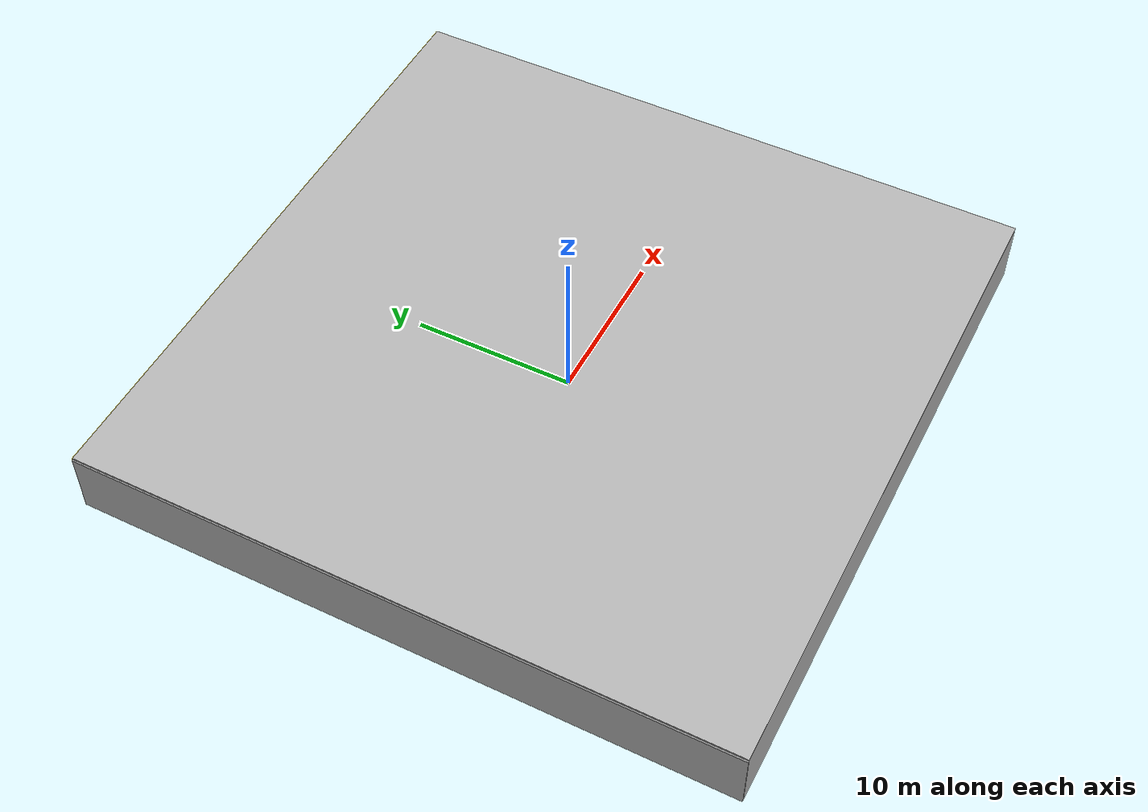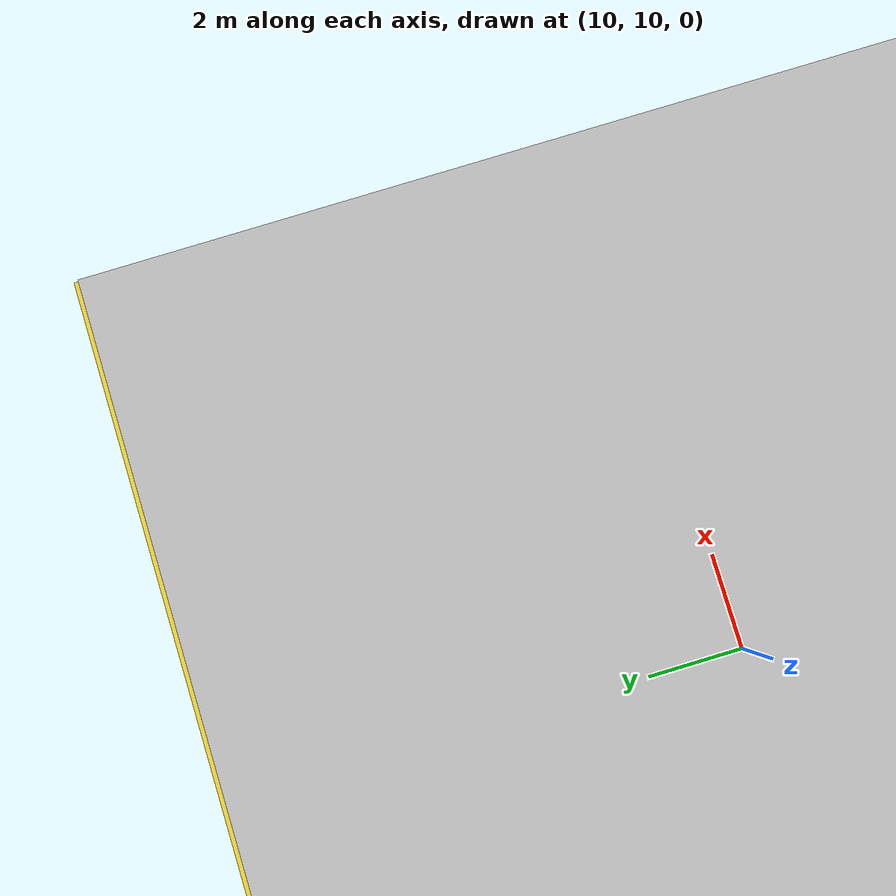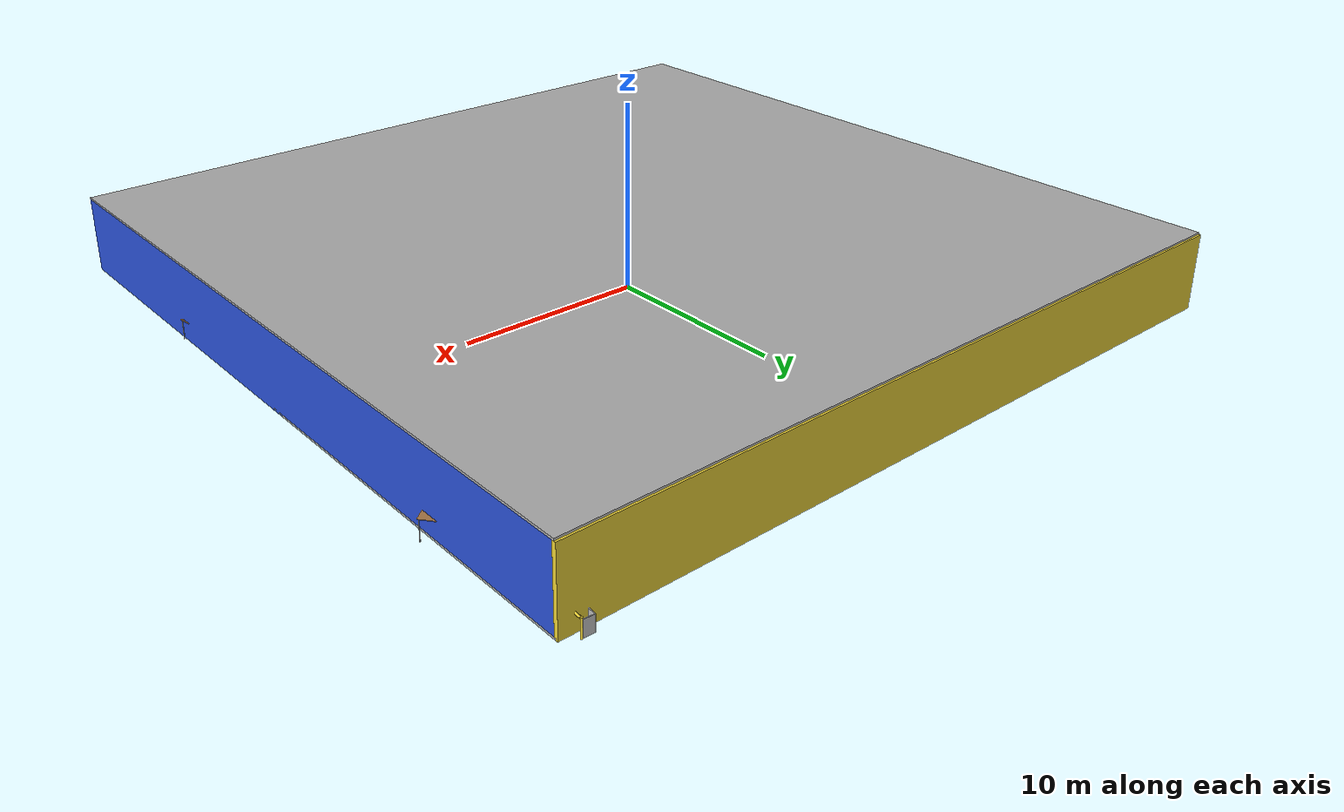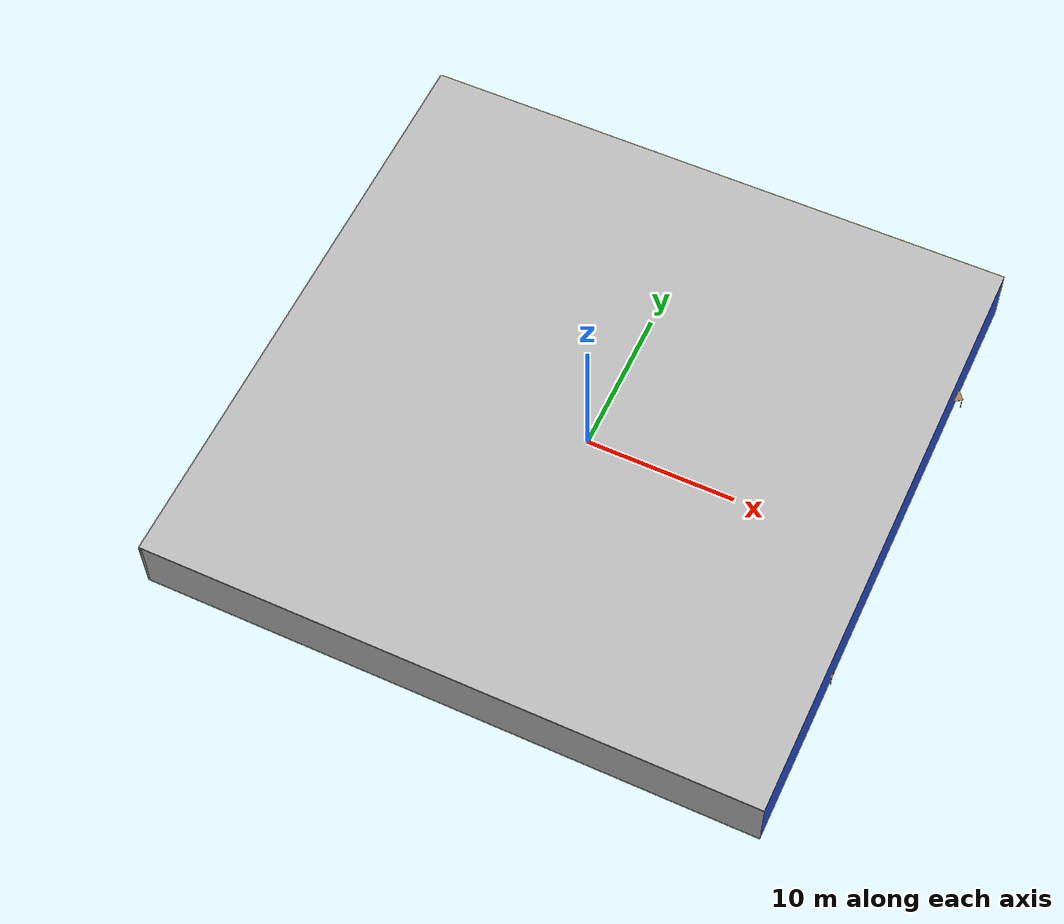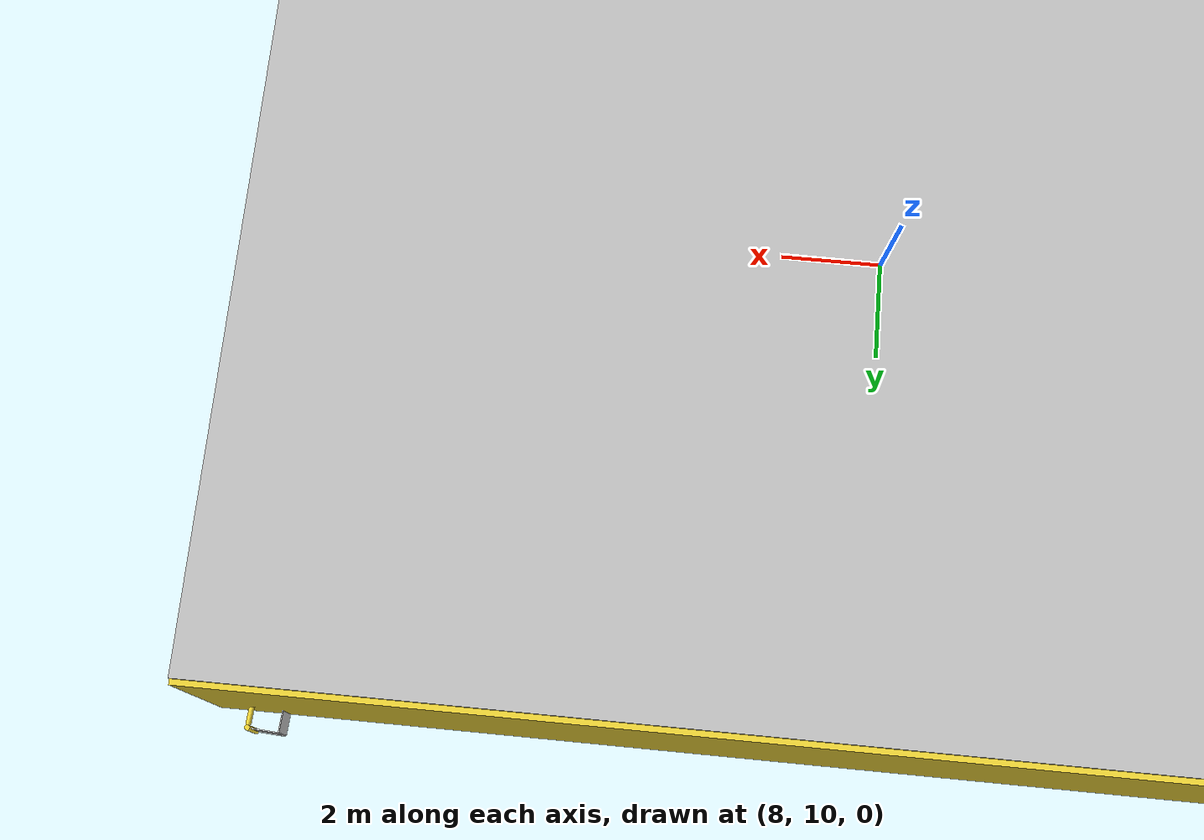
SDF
<sdf version="1.4">
 <world name="default">
  <physics type="ode">
   <max_step_size>0.001</max_step_size>
   <real_time_factor>1</real_time_factor>
   <real_time_update_rate>1000</real_time_update_rate>
   <gravity>0 0 -9.8</gravity>
  </physics>
  <scene><ambient>0.4 0.4 0.4 1</ambient><background>0.7 0.7 0.7 1</background><shadows>1</shadows></scene>
  <model name="Surrounding">
   <static>1</static>
   <link name="Ceiling">
    <collision name="Ceiling_Collision"><geometry><box><size>40 40 0.1</size></box></geometry></collision>
    <visual name="Ceiling_Visual">
     <geometry><box><size>40 40 0.1</size></box></geometry>
     <material>
      <script><uri>file://media/materials/scripts/gazebo.material</uri><name>Gazebo/LightOff</name></script>
     </material>
    </visual>
    <pose>0 0 4.05 0 0 0</pose>
   </link>
   <link name="Wall_South">
    <collision name="Wall_South_Collision">
     <geometry><box><size>40 0 4</size></box></geometry>
     <pose>0 0 2 0 -0 0</pose>
    </collision>
    <visual name="Wall_South_Visual">
     <pose>0 0 2 0 -0 0</pose>
     <geometry><box><size>40 0 4</size></box></geometry>
     <material>
      <script><uri>file://media/materials/scripts/gazebo.material</uri><name>Gazebo/LightOn</name></script>
     </material>
    </visual>
    <velocity_decay><linear>0</linear><angular>0</angular></velocity_decay>
    <pose>0 -20 0 0 -0 0</pose>
   </link>
   <link name="Wall_East">
    <collision name="Wall_21_Collision">
     <geometry><box><size>40 0 4</size></box></geometry>
     <pose>0 0 2 0 -0 0</pose>
    </collision>
    <visual name="Wall_21_Visual">
     <pose>0 0 2 0 -0 0</pose>
     <geometry><box><size>40 0 4</size></box></geometry>
     <material>
      <script><uri>file://media/materials/scripts/gazebo.material</uri><name>Gazebo/BlueLaser</name></script>
     </material>
    </visual>
    <velocity_decay><linear>0</linear><angular>0</angular></velocity_decay>
    <pose>20 0 0 0 -0 1.5708</pose>
   </link>
   <link name="Wall_North">
    <collision name="Wall_22_Collision">
     <geometry><box><size>40 0.2 4</size></box></geometry>
     <pose>0 0 2 0 -0 0</pose>
    </collision>
    <visual name="Wall_22_Visual">
     <pose>0 0 2 0 -0 0</pose>
     <geometry><box><size>40 0.2 4</size></box></geometry>
     <material>
      <script><uri>file://media/materials/scripts/gazebo.material</uri><name>Gazebo/ZincYellow</name></script>
     </material>
    </visual>
    <velocity_decay><linear>0</linear><angular>0</angular></velocity_decay>
    <pose>0 20 0 0 -0 0</pose>
   </link>
   <link name="Wall_West">
    <collision name="Wall_23_Collision">
     <geometry><box><size>40 0.2 4</size></box></geometry>
     <pose>0 0 2 0 -0 0</pose>
    </collision>
    <visual name="Wall_23_Visual">
     <pose>0 0 2 0 -0 0</pose>
     <geometry><box><size>40 0.2 4</size></box></geometry>
     <material>
      <script><uri>file://media/materials/scripts/gazebo.material</uri><name>Gazebo/GreyGradientSky</name></script>
     </material>
    </visual>
    <velocity_decay><linear>0</linear><angular>0</angular></velocity_decay>
    <pose>-20 0 0 0 0 -1.5708</pose>
   </link>
   <link name="Ground_link">
    <collision name="collision">
     <pose>0 0 .05 0 -0 0</pose>
     <geometry><box><size>40 40 0.1</size></box></geometry>
    </collision>
    <visual name="visual">
     <pose>0 0 .05 0 -0 0</pose>
     <geometry><box><size>40 40 0.1</size></box></geometry>
     <material>
      <script><uri>file://media/materials/scripts/gazebo.material</uri><name>Gazebo/CloudySky</name></script>
     </material>
    </visual>
   </link>
   <static>1</static>
  </model>
  <spherical_coordinates>
   <surface_model>EARTH_WGS84</surface_model>
   <latitude_deg>0</latitude_deg>
   <longitude_deg>0</longitude_deg>
   <elevation>0</elevation>
   <heading_deg>0</heading_deg>
  </spherical_coordinates>
  <light name="lightball_0" type="diffuse">
   <diffuse>0.8 0.8 0.8 1</diffuse>
   <specular>0.2 0.2 0.2 1</specular>
   <attenuation>
    <range>100</range>
    <constant>0.7</constant>
    <linear>0.01</linear>
    <quadratic>0.001</quadratic>
   </attenuation>
   <direction>-0.5 0.1 -0.9</direction>
   <pose>-12.694584407 12.2081705078 0.79609064729 0 0 0</pose>
  </light>
  <light name="lightball_1" type="diffuse">
   <diffuse>0.8 0.8 0.8 1</diffuse>
   <specular>0.2 0.2 0.2 1</specular>
   <attenuation>
    <range>100</range>
    <constant>0.7</constant>
    <linear>0.01</linear>
    <quadratic>0.001</quadratic>
   </attenuation>
   <direction>-0.5 0.1 -0.9</direction>
   <pose>-18.2538684958 2.86339165803 1.02071663612 0 0 0</pose>
  </light>
  <light name="lightball_2" type="diffuse">
   <diffuse>0.8 0.8 0.8 1</diffuse>
   <specular>0.2 0.2 0.2 1</specular>
   <attenuation>
    <range>100</range>
    <constant>0.7</constant>
    <linear>0.01</linear>
    <quadratic>0.001</quadratic>
   </attenuation>
   <direction>-0.5 0.1 -0.9</direction>
   <pose>10.7242878062 -2.04741909131 3.08214155673 0 0 0</pose>
  </light>
  <include><uri>model://table</uri><pose>-17.7046050917 -14.7740241379 0 0 0 2.80518737474</pose></include>
  <include>
   <uri>model://textured_shapes</uri>
   <pose>-17.1430772845 -0.149692644991 0 0 0 0.622065804855</pose>
  </include>
  <include>
   <uri>model://textured_shapes</uri>
   <pose>-18.0624999106 6.14102218181 0 0 0 0.757357767108</pose>
  </include>
  <include><uri>model://table</uri><pose>-14.5133476784 -6.22709435245 0 0 0 0.441388762508</pose></include>
  <include>
   <uri>model://construction_cone</uri>
   <pose>-13.5882933323 18.6429167113 0 0 0 1.28817248901</pose>
  </include>
  <include>
   <uri>model://textured_shapes</uri>
   <pose>-12.6179607728 -13.4440977317 0 0 0 0.639274847408</pose>
  </include>
  <include><uri>model://cabinet</uri><pose>-11.7630651025 -4.3094007084 0 0 0 2.13172056628</pose></include>
  <include>
   <uri>model://robocup_3Dsim_goal</uri>
   <pose>-11.8016839944 18.7574520751 0 0 0 2.53937179808</pose>
  </include>
  <include>
   <uri>model://construction_cone</uri>
   <pose>-9.27104380961 -6.12860909815 0 0 0 2.1699806053</pose>
  </include>
  <include>
   <uri>model://textured_shapes</uri>
   <pose>-7.71605419649 2.91119229176 0 0 0 1.65495107836</pose>
  </include>
  <include><uri>model://table</uri><pose>-6.66470333895 -11.3180159038 0 0 0 0.189892027484</pose></include>
  <include><uri>model://cabinet</uri><pose>1.11902407501 10.5237400578 0 0 0 1.83895917379</pose></include>
  <include><uri>model://cabinet</uri><pose>-0.416843131778 12.1651609567 0 0 0 0.442311656435</pose></include>
  <include>
   <uri>model://textured_shapes</uri>
   <pose>4.51265530383 -9.15172835735 0 0 0 3.01360507082</pose>
  </include>
  <include>
   <uri>model://construction_cone</uri>
   <pose>4.52372679496 0.994808518621 0 0 0 2.62049281265</pose>
  </include>
  <include><uri>model://cabinet</uri><pose>3.01542077751 3.26245040654 0 0 0 1.42855960256</pose></include>
  <include>
   <uri>model://construction_cone</uri>
   <pose>2.60758960828 11.6357781315 0 0 0 0.569450603207</pose>
  </include>
  <include>
   <uri>model://construction_cone</uri>
   <pose>5.80693909989 -16.5953389542 0 0 0 0.0373991738891</pose>
  </include>
  <include><uri>model://cabinet</uri><pose>7.01511020027 -15.3206252001 0 0 0 1.43870335358</pose></include>
  <include>
   <uri>model://textured_shapes</uri>
   <pose>6.89044546424 9.20175494435 0 0 0 1.85375974771</pose>
  </include>
  <include><uri>model://table</uri><pose>9.55646897261 0.112130676715 0 0 0 1.36105010163</pose></include>
  <include>
   <uri>model://textured_shapes</uri>
   <pose>9.39733585343 11.8365320046 0 0 0 1.92389158578</pose>
  </include>
  <include><uri>model://cabinet</uri><pose>9.57000669607 16.0590706919 0 0 0 2.77000892728</pose></include>
  <include><uri>model://cabinet</uri><pose>11.8786275265 -5.88968142456 0 0 0 2.33365049832</pose></include>
  <include>
   <uri>model://robocup_3Dsim_goal</uri>
   <pose>12.7162074463 2.36313230304 0 0 0 1.23435498923</pose>
  </include>
  <include>
   <uri>model://construction_cone</uri>
   <pose>15.2743608766 -9.01051585529 0 0 0 2.40898323692</pose>
  </include>
  <include>
   <uri>model://robocup_3Dsim_goal</uri>
   <pose>15.6773693204 12.6648250976 0 0 0 2.86588628279</pose>
  </include>
  <include><uri>model://cabinet</uri><pose>16.4605531259 16.1926146561 0 0 0 2.16579518616</pose></include>
  <include><uri>model://table</uri><pose>19.5925895663 -8.67314448935 0 0 0 1.73253453869</pose></include>
  <include><uri>model://cabinet</uri><pose>17.5421465216 -2.15818651161 0 0 0 0.222442727002</pose></include>
  <include><uri>model://table</uri><pose>19.697010895 12.5378125261 0 0 0 2.24486483163</pose></include>
  <include>
   <uri>model://robocup_3Dsim_goal</uri>
   <pose>19.20941587 19.4276346586 0 0 0 3.07988636786</pose>
  </include>
 </world>
</sdf>

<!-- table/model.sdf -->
<sdf version="1.5">
  <model name="table">
    <static>true</static>
    <link name="link">
      <collision name="surface">
        <pose>0 0 1.0 0 0 0</pose>
        <geometry>
          <box>
            <size>1.5 0.8 0.03</size>
          </box>
        </geometry>
        <surface>
          <friction>
            <ode>
              <mu>0.6</mu>
              <mu2>0.6</mu2>
            </ode>
          </friction>
        </surface>
      </collision>
      <visual name="visual1">
        <pose>0 0 1.0 0 0 0</pose>
        <geometry>
          <box>
            <size>1.5 0.8 0.03</size>
          </box>
        </geometry>
        <material>
          <script>
            <uri>model://media/materials/scripts/gazebo.material</uri>
            <name>Gazebo/Wood</name>
          </script>
        </material>
      </visual>
      <collision name="front_left_leg">
        <pose>0.68 0.38 0.5 0 0 0</pose>
        <geometry>
          <cylinder>
            <radius>0.02</radius>
            <length>1.0</length>
          </cylinder>
        </geometry>
      </collision>
      <visual name="front_left_leg">
        <pose>0.68 0.38 0.5 0 0 0</pose>
        <geometry>
          <cylinder>
            <radius>0.02</radius>
            <length>1.0</length>
          </cylinder>
        </geometry>
        <material>
          <script>
            <uri>model://media/materials/scripts/gazebo.material</uri>
            <name>Gazebo/Grey</name>
          </script>
        </material>
      </visual>
      <collision name="front_right_leg">
        <pose>0.68 -0.38 0.5 0 0 0</pose>
        <geometry>
          <cylinder>
            <radius>0.02</radius>
            <length>1.0</length>
          </cylinder>
        </geometry>
      </collision>
      <visual name="front_right_leg">
        <pose>0.68 -0.38 0.5 0 0 0</pose>
        <geometry>
          <cylinder>
            <radius>0.02</radius>
            <length>1.0</length>
          </cylinder>
        </geometry>
        <material>
          <script>
            <uri>model://media/materials/scripts/gazebo.material</uri>
            <name>Gazebo/Grey</name>
          </script>
        </material>
      </visual>
      <collision name="back_right_leg">
        <pose>-0.68 -0.38 0.5 0 0 0</pose>
        <geometry>
          <cylinder>
            <radius>0.02</radius>
            <length>1.0</length>
          </cylinder>
        </geometry>
      </collision>
      <visual name="back_right_leg">
        <pose>-0.68 -0.38 0.5 0 0 0</pose>
        <geometry>
          <cylinder>
            <radius>0.02</radius>
            <length>1.0</length>
          </cylinder>
        </geometry>
        <material>
          <script>
            <uri>model://media/materials/scripts/gazebo.material</uri>
            <name>Gazebo/Grey</name>
          </script>
        </material>
      </visual>
      <collision name="back_left_leg">
        <pose>-0.68 0.38 0.5 0 0 0</pose>
        <geometry>
          <cylinder>
            <radius>0.02</radius>
            <length>1.0</length>
          </cylinder>
        </geometry>
      </collision>
      <visual name="back_left_leg">
        <pose>-0.68 0.38 0.5 0 0 0</pose>
        <geometry>
          <cylinder>
            <radius>0.02</radius>
            <length>1.0</length>
          </cylinder>
        </geometry>
        <material>
          <script>
            <uri>model://media/materials/scripts/gazebo.material</uri>
            <name>Gazebo/Grey</name>
          </script>
        </material>
      </visual>
    </link>
  </model>
</sdf>

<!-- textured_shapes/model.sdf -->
<sdf version="1.6">
  <model name="textured_shapes">
    <pose>0 0 0.5 0 0 0</pose>
    <link name="box">
      <pose>0 -1.5 0 0 0 0</pose>
      <collision name="collision">
        <geometry>
          <box>
            <size>1 1 1</size>
          </box>
        </geometry>
      </collision>
      <visual name="visual">
        <geometry>
          <box>
            <size>1 1 1</size>
          </box>
        </geometry>
        <material>
          <script>
            <uri>model://../model_source/models/textured_shapes/materials/scripts</uri>
            <uri>model://../model_source/models/textured_shapes/materials/textures</uri>
            <name>TexturedShape/Squares</name>
          </script>
        </material>
      </visual>
    </link>
    <link name="sphere">
      <collision name="collision">
        <geometry>
          <sphere>
            <radius>0.5</radius>
          </sphere>
        </geometry>
      </collision>
      <visual name="visual">
        <geometry>
          <sphere>
            <radius>0.5</radius>
          </sphere>
        </geometry>
        <material>
          <script>
            <uri>model://../model_source/models/textured_shapes/materials/scripts</uri>
            <uri>model://../model_source/models/textured_shapes/materials/textures</uri>
            <name>TexturedShape/Squares</name>
          </script>
        </material>
      </visual>
    </link>
    <link name="cylinder">
      <pose>0 1.5 0 0 0 0</pose>
      <collision name="collision">
        <geometry>
          <cylinder>
            <radius>0.5</radius>
            <length>1</length>
          </cylinder>
        </geometry>
      </collision>
      <visual name="visual">
        <geometry>
          <cylinder>
            <radius>0.5</radius>
            <length>1</length>
          </cylinder>
        </geometry>
        <material>
          <script>
            <uri>model://../model_source/models/textured_shapes/materials/scripts</uri>
            <uri>model://../model_source/models/textured_shapes/materials/textures</uri>
            <name>TexturedShape/Squares</name>
          </script>
        </material>
      </visual>
    </link>
  </model>
</sdf>

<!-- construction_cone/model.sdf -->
<sdf version="1.5">
  <model name="Construction Cone">
    <link name="link">
      <collision name="collision">
        <geometry>
          <mesh>
            <scale>10 10 10</scale>
            <uri>file://isr-testbed/construction_cone/meshes/construction_cone.dae</uri>
          </mesh>
        </geometry>
      </collision>
      <visual name="visual">
        <geometry>
          <mesh>
            <scale>10 10 10</scale>
            <uri>file://isr-testbed/construction_cone/meshes/construction_cone.dae</uri>
          </mesh>
        </geometry>
      </visual>
    </link>
  </model>
</sdf>

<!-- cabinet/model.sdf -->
<sdf version="1.5">
  <model name="cabinet">
    <static>true</static>
    <link name="cabinet_bottom_plate">
      <inertial>
        <pose>0 0 -1 0 0 0</pose>
        <inertia>
          <ixx>2.050000</ixx>
          <ixy>0</ixy>
          <ixz>0</ixz>
          <iyy>2.050000</iyy>
          <iyz>0</iyz>
          <izz>2.050000</izz>
        </inertia>
        <mass>25.000000</mass>
      </inertial>
      <collision name="cabinet_bottom_plate_geom">
        <pose>0 0 0.010000 0 0 0</pose>
        <geometry>
          <box>
            <size>0.450000 0.450000 0.020000</size>
          </box>
        </geometry>
      </collision>
      <visual name="cabinet_bottom_plate_geom_visual">
        <pose>0 0 0.010000 0 0 0</pose>
        <geometry>
          <box>
            <size>0.450000 0.450000 0.020000</size>
          </box>
        </geometry>
        <material>
          <script>
            <uri>model://media/materials/scripts/gazebo.material</uri>
            <name>Gazebo/Wood</name>
          </script>
        </material>
      </visual>
      <collision name="cabinet_bottom_plate_geom_cabinet_back_plate">
        <pose>0.235000 0 0.510000 0 0 0</pose>
        <geometry>
          <box>
            <size>0.020000 0.450000 1.020000</size>
          </box>
        </geometry>
      </collision>
      <visual name="cabinet_bottom_plate_geom_cabinet_back_plate_visual">
        <pose>0.235000 0 0.510000 0 0 0</pose>
        <geometry>
          <box>
            <size>0.020000 0.450000 1.020000</size>
          </box>
        </geometry>
        <material>
          <script>
            <uri>model://media/materials/scripts/gazebo.material</uri>
            <name>Gazebo/Wood</name>
          </script>
        </material>
      </visual>
      <collision name="cabinet_bottom_plate_geom_cabinet_left_plate">
        <pose>0 0.235000 0.510000 0 0 0</pose>
        <geometry>
          <box>
            <size>0.450000 0.020000 1.020000</size>
          </box>
        </geometry>
      </collision>
      <visual name="cabinet_bottom_plate_geom_cabinet_left_plate_visual">
        <pose>0 0.235000 0.510000 0 0 0</pose>
        <geometry>
          <box>
            <size>0.450000 0.020000 1.020000</size>
          </box>
        </geometry>
        <material>
          <script>
            <uri>model://media/materials/scripts/gazebo.material</uri>
            <name>Gazebo/Wood</name>
          </script>
        </material>
      </visual>
      <collision name="cabinet_bottom_plate_geom_cabinet_middle_plate">
        <pose>0 0 0.510000 0 0 0</pose>
        <geometry>
          <box>
            <size>0.450000 0.450000 0.020000</size>
          </box>
        </geometry>
      </collision>
      <visual name="cabinet_bottom_plate_geom_cabinet_middle_plate_visual">
        <pose>0 0 0.510000 0 0 0</pose>
        <geometry>
          <box>
            <size>0.450000 0.450000 0.020000</size>
          </box>
        </geometry>
        <material>
          <script>
            <uri>model://media/materials/scripts/gazebo.material</uri>
            <name>Gazebo/Wood</name>
          </script>
        </material>
      </visual>
      <collision name="cabinet_bottom_plate_geom_cabinet_right_plate">
        <pose>0 -0.235000 0.510000 0 0 0</pose>
        <geometry>
          <box>
            <size>0.450000 0.020000 1.020000</size>
          </box>
        </geometry>
      </collision>
      <visual name="cabinet_bottom_plate_geom_cabinet_right_plate_visual">
        <pose>0 -0.235000 0.510000 0 0 0</pose>
        <geometry>
          <box>
            <size>0.450000 0.020000 1.020000</size>
          </box>
        </geometry>
        <material>
          <script>
            <uri>model://media/materials/scripts/gazebo.material</uri>
            <name>Gazebo/Wood</name>
          </script>
        </material>
      </visual>
      <collision name="cabinet_bottom_plate_geom_cabinet_top_plate">
        <pose>0 0 1.010000 0 0 0</pose>
        <geometry>
          <box>
            <size>0.450000 0.450000 0.020000</size>
          </box>
        </geometry>
      </collision>
      <visual name="cabinet_bottom_plate_geom_cabinet_top_plate_visual">
        <pose>0 0 1.010000 0 0 0</pose>
        <geometry>
          <box>
            <size>0.450000 0.450000 0.020000</size>
          </box>
        </geometry>
        <material>
          <script>
            <uri>model://media/materials/scripts/gazebo.material</uri>
            <name>Gazebo/Wood</name>
          </script>
        </material>
      </visual>
    </link>
  </model>
</sdf>

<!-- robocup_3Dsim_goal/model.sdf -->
<sdf version="1.5">
  <model name="robocup_3d_goal">
    <static>true</static>
    <link name="left_post">
      <pose>0 1.05 0.45 0 0 0</pose>
      <collision name="collision">
        <geometry>
          <cylinder>
            <radius>0.05</radius>
            <length>0.9</length>
          </cylinder>
        </geometry>
      </collision>
      <visual name="visual">
        <geometry>
          <cylinder>
            <radius>0.05</radius>
            <length>0.9</length>
          </cylinder>
        </geometry>
        <material>
          <script>
            <uri>file://media/materials/scripts/gazebo.material</uri>
            <name>Gazebo/ZincYellow</name>
          </script>
        </material>
      </visual>
    </link>
    <link name="left_support_horiz_lower">
      <pose>0.30 1.05 0.01 0 0 0</pose>
      <collision name="collision">
        <geometry>
          <box>
            <size>0.50 0.02 0.02</size>
          </box>
        </geometry>
      </collision>
      <visual name="visual">
        <geometry>
          <box>
            <size>0.50 0.02 0.02</size>
          </box>
        </geometry>
        <material>
          <script>
            <uri>file://media/materials/scripts/gazebo.material</uri>
            <name>Gazebo/White</name>
          </script>
        </material>
      </visual>
    </link>
    <link name="left_support_horiz_upper">
      <pose>0.30 1.05 0.79 0 0 0</pose>
      <collision name="collision">
        <geometry>
          <box>
            <size>0.50 0.02 0.02</size>
          </box>
        </geometry>
      </collision>
      <visual name="visual">
        <geometry>
          <box>
            <size>0.50 0.02 0.02</size>
          </box>
        </geometry>
        <material>
          <script>
            <uri>file://media/materials/scripts/gazebo.material</uri>
            <name>Gazebo/White</name>
          </script>
        </material>
      </visual>
    </link>
    <link name="left_support_vertical">
      <pose>0.56 1.05 0.4 0 1.5708 0</pose>
      <collision name="collision">
        <geometry>
          <box>
            <size>0.80 0.02 0.02</size>
          </box>
        </geometry>
      </collision>
      <visual name="visual">
        <geometry>
          <box>
            <size>0.80 0.02 0.02</size>
          </box>
        </geometry>
        <material>
          <script>
            <uri>file://media/materials/scripts/gazebo.material</uri>
            <name>Gazebo/White</name>
          </script>
        </material>
      </visual>
    </link>
    <link name="right_support_horiz_lower">
      <pose>0.30 -1.05 0.01 0 0 0</pose>
      <collision name="collision">
        <geometry>
          <box>
            <size>0.50 0.02 0.02</size>
          </box>
        </geometry>
      </collision>
      <visual name="visual">
        <geometry>
          <box>
            <size>0.50 0.02 0.02</size>
          </box>
        </geometry>
        <material>
          <script>
            <uri>file://media/materials/scripts/gazebo.material</uri>
            <name>Gazebo/White</name>
          </script>
        </material>
      </visual>
    </link>
    <link name="right_support_horiz_upper">
      <pose>0.30 -1.05 0.79 0 0 0</pose>
      <collision name="collision">
        <geometry>
          <box>
            <size>0.50 0.02 0.02</size>
          </box>
        </geometry>
      </collision>
      <visual name="visual">
        <geometry>
          <box>
            <size>0.50 0.02 0.02</size>
          </box>
        </geometry>
        <material>
          <script>
            <uri>file://media/materials/scripts/gazebo.material</uri>
            <name>Gazebo/White</name>
          </script>
        </material>
      </visual>
    </link>
    <link name="right_support_vertical">
      <pose>0.56 -1.05 0.4 0 1.5708 0</pose>
      <collision name="collision">
        <geometry>
          <box>
            <size>0.80 0.02 0.02</size>
          </box>
        </geometry>
      </collision>
      <visual name="visual">
        <geometry>
          <box>
            <size>0.80 0.02 0.02</size>
          </box>
        </geometry>
        <material>
          <script>
            <uri>file://media/materials/scripts/gazebo.material</uri>
            <name>Gazebo/White</name>
          </script>
        </material>
      </visual>
    </link>
    <link name="center_support_horiz_lower">
      <pose>0.56 0 0.01 0 1.5708 0</pose>
      <collision name="collision">
        <geometry>
          <box>
            <size>0.02 2.08 0.02</size>
          </box>
        </geometry>
      </collision>
      <visual name="visual">
        <geometry>
          <box>
            <size>0.02 2.08 0.02</size>
          </box>
        </geometry>
        <material>
          <script>
            <uri>file://media/materials/scripts/gazebo.material</uri>
            <name>Gazebo/White</name>
          </script>
        </material>
      </visual>
    </link>
    <link name="center_support_horiz_upper">
      <pose>0.56 0 0.79 0 1.5708 0</pose>
      <collision name="collision">
        <geometry>
          <box>
            <size>0.02 2.08 0.02</size>
          </box>
        </geometry>
      </collision>
      <visual name="visual">
        <geometry>
          <box>
            <size>0.02 2.08 0.02</size>
          </box>
        </geometry>
        <material>
          <script>
            <uri>file://media/materials/scripts/gazebo.material</uri>
            <name>Gazebo/White</name>
          </script>
        </material>
      </visual>
    </link>
    <link name="right_post">
      <pose>0 -1.05 0.45 0 0 0</pose>
      <collision name="collision">
        <geometry>
          <cylinder>
            <radius>0.05</radius>
            <length>0.9</length>
          </cylinder>
        </geometry>
      </collision>
      <visual name="visual">
        <geometry>
          <cylinder>
            <radius>0.05</radius>
            <length>0.9</length>
          </cylinder>
        </geometry>
        <material>
          <script>
            <uri>file://media/materials/scripts/gazebo.material</uri>
            <name>Gazebo/ZincYellow</name>
          </script>
        </material>
      </visual>
    </link>
    <link name="crossbar">
      <pose>0 0 0.85 1.57 1.57 0</pose>
      <collision name="collision">
        <geometry>
          <cylinder>
            <radius>0.05</radius>
            <length>2.0</length>
          </cylinder>
        </geometry>
      </collision>
      <visual name="visual">
        <geometry>
          <cylinder>
            <radius>0.05</radius>
            <length>2.0</length>
          </cylinder>
        </geometry>
        <material>
          <script>
            <uri>file://media/materials/scripts/gazebo.material</uri>
            <name>Gazebo/ZincYellow</name>
          </script>
        </material>
      </visual>
    </link>
    <link name="center_net">
      <pose>0.56 0 0.40 0 0 0</pose>
      <collision name="collision">
        <geometry>
          <box>
            <size>0.01 2.1 0.80</size>
          </box>
        </geometry>
      </collision>
      <visual name="visual">
        <geometry>
          <box>
            <size>0.01 2.1 0.80</size>
          </box>
        </geometry>
        <material>
          <script>
            <uri>model://../model_source/models/robocup09_spl_field/materials/scripts/</uri>
            <uri>model://../model_source/models/robocup09_spl_field/materials/textures/</uri>
            <name>RoboCup/Net</name>
          </script>
        </material>
      </visual>
    </link>
    <link name="left_net">
      <pose>0.30 1.05 0.40 0 0 0</pose>
      <collision name="collision">
        <geometry>
          <box>
            <size>0.50 0.01 0.76</size>
          </box>
        </geometry>
      </collision>
      <visual name="visual">
        <geometry>
          <box>
            <size>0.50 0.01 0.76</size>
          </box>
        </geometry>
        <material>
          <script>
            <uri>model://../model_source/models/robocup09_spl_field/materials/scripts/</uri>
            <uri>model://../model_source/models/robocup09_spl_field/materials/textures/</uri>
            <name>RoboCup/Net</name>
          </script>
        </material>
      </visual>
    </link>
    <link name="right_net">
      <pose>0.30 -1.05 0.40 0 0 0</pose>
      <collision name="collision">
        <geometry>
          <box>
            <size>0.50 0.01 0.76</size>
          </box>
        </geometry>
      </collision>
      <visual name="visual">
        <geometry>
          <box>
            <size>0.50 0.01 0.76</size>
          </box>
        </geometry>
        <material>
          <script>
            <uri>model://../model_source/models/robocup09_spl_field/materials/scripts/</uri>
            <uri>model://../model_source/models/robocup09_spl_field/materials/textures/</uri>
            <name>RoboCup/Net</name>
          </script>
        </material>
      </visual>
    </link>
  </model>
</sdf>
